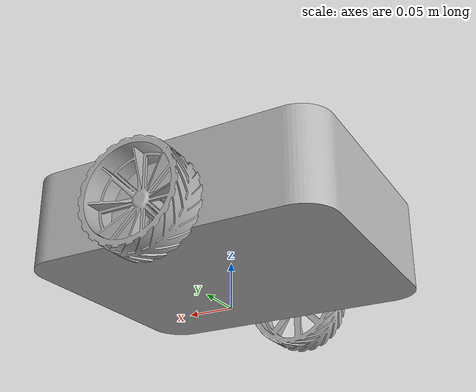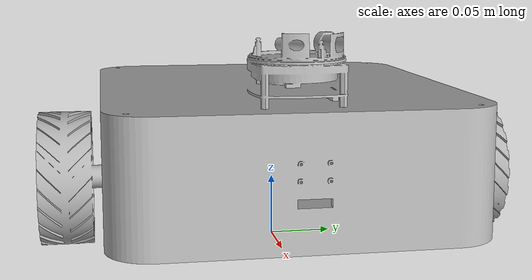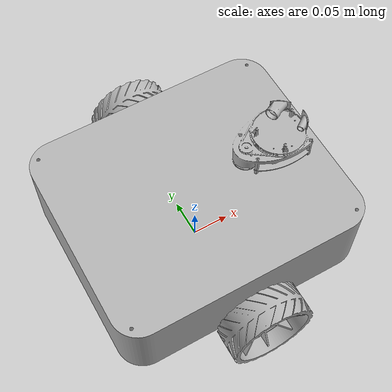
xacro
<?xml version="1.0" ?>
<robot name="bot" xmlns:xacro="http://www.ros.org/wiki/xacro">

<link name="base_link">
  <inertial>
    <origin xyz="-0.10305344992346582 -0.10000000000000002 0.052918293473760994" rpy="0 0 0"/>
    <mass value="2.3138752403503777"/>
    <inertia ixx="0.007906" iyy="0.008252" izz="0.014647" ixy="0.0" iyz="-0.0" ixz="0.000266"/>
  </inertial>
  <visual>
    <origin xyz="0 0 0" rpy="0 0 0"/>
    <geometry>
      <mesh filename="package://bot_description/meshes/base_link.stl" scale="0.001 0.001 0.001"/>
    </geometry>
    <material name="silver"/>
  </visual>
  <collision>
    <origin xyz="0 0 0" rpy="0 0 0"/>
    <geometry>
      <mesh filename="package://bot_description/meshes/base_link.stl" scale="0.001 0.001 0.001"/>
    </geometry>
  </collision>
</link>
<gazebo>
  <plugin name="control" filename="libgazebo_ros_control.so"/>
</gazebo>
<gazebo reference="base_link">
  <material>${body_color}</material>
  <mu1>0.2</mu1>
  <mu2>0.2</mu2>
  <selfCollide>true</selfCollide>
  <gravity>true</gravity>
</gazebo>

<gazebo reference="right_wheel_1">
  <material>${body_color}</material>
  <mu1>0.2</mu1>
  <mu2>0.2</mu2>
  <selfCollide>true</selfCollide>
</gazebo>

<gazebo reference="left_wheel_1">
  <material>${body_color}</material>
  <mu1>0.2</mu1>
  <mu2>0.2</mu2>
  <selfCollide>true</selfCollide>
</gazebo>

<transmission name="Rev1_tran">
  <type>transmission_interface/SimpleTransmission</type>
  <joint name="Rev1">
    <hardwareInterface>hardware_interface/EffortJointInterface</hardwareInterface>
  </joint>
  <actuator name="Rev1_actr">
    <hardwareInterface>hardware_interface/EffortJointInterface</hardwareInterface>
    <mechanicalReduction>1</mechanicalReduction>
  </actuator>
</transmission>

<transmission name="Rev2_tran">
  <type>transmission_interface/SimpleTransmission</type>
  <joint name="Rev2">
    <hardwareInterface>hardware_interface/EffortJointInterface</hardwareInterface>
  </joint>
  <actuator name="Rev2_actr">
    <hardwareInterface>hardware_interface/EffortJointInterface</hardwareInterface>
    <mechanicalReduction>1</mechanicalReduction>
  </actuator>
</transmission>

<material name="silver">
  <color rgba="0.700 0.700 0.700 1.000"/>
</material>

<link name="right_wheel_1">
  <inertial>
    <origin xyz="2.7755575615628914e-17 0.012499999999999997 0.0" rpy="0 0 0"/>
    <mass value="0.1826050729899067"/>
    <inertia ixx="0.000124" iyy="0.000228" izz="0.000124" ixy="0.0" iyz="-0.0" ixz="0.0"/>
  </inertial>
  <visual>
    <origin xyz="0.1 -0.0 -0.05" rpy="0 0 0"/>
    <geometry>
      <mesh filename="package://bot_description/meshes/right_wheel_1.stl" scale="0.001 0.001 0.001"/>
    </geometry>
    <material name="silver"/>
  </visual>
  <collision>
    <origin xyz="0.1 -0.0 -0.05" rpy="0 0 0"/>
    <geometry>
      <mesh filename="package://bot_description/meshes/right_wheel_1.stl" scale="0.001 0.001 0.001"/>
    </geometry>
  </collision>
</link>

<link name="left_wheel_1">
  <inertial>
    <origin xyz="-1.3877787807814457e-17 -0.012499999999999983 -1.3877787807814457e-17" rpy="0 0 0"/>
    <mass value="0.1826050729899068"/>
    <inertia ixx="0.000124" iyy="0.000228" izz="0.000124" ixy="-0.0" iyz="-0.0" ixz="-0.0"/>
  </inertial>
  <visual>
    <origin xyz="0.1 0.2 -0.05" rpy="0 0 0"/>
    <geometry>
      <mesh filename="package://bot_description/meshes/left_wheel_1.stl" scale="0.001 0.001 0.001"/>
    </geometry>
    <material name="silver"/>
  </visual>
  <collision>
    <origin xyz="0.1 0.2 -0.05" rpy="0 0 0"/>
    <geometry>
      <mesh filename="package://bot_description/meshes/left_wheel_1.stl" scale="0.001 0.001 0.001"/>
    </geometry>
  </collision>
</link>

<joint name="Rev1" type="continuous">
  <origin xyz="-0.1 0.0 0.05" rpy="0 0 0"/>
  <parent link="base_link"/>
  <child link="right_wheel_1"/>
  <axis xyz="0.0 1.0 0.0"/>
</joint>

<joint name="Rev2" type="continuous">
  <origin xyz="-0.1 -0.2 0.05" rpy="0 0 0"/>
  <parent link="base_link"/>
  <child link="left_wheel_1"/>
  <axis xyz="0.0 -1.0 0.0"/>
</joint>

</robot>
